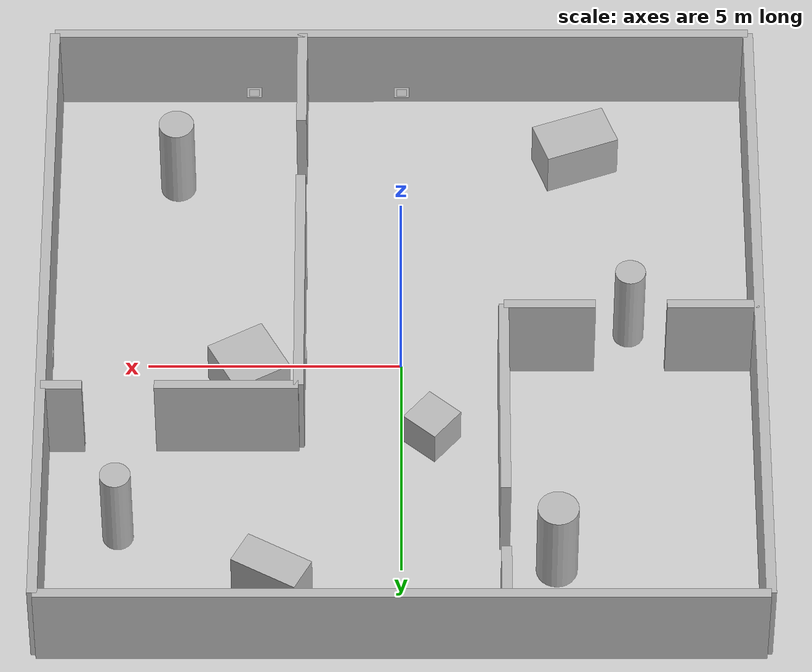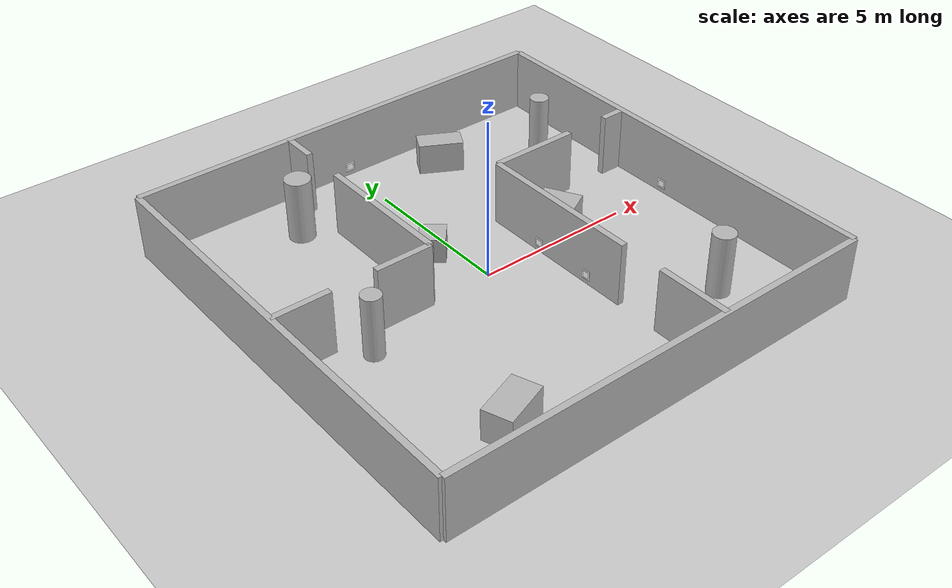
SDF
<?xml version="1.0" ?>
<sdf version="1.8">
  <world name="depot_world">
    <physics name="1ms" type="dart">
      <max_step_size>0.001</max_step_size>
      <real_time_factor>1.0</real_time_factor>
    </physics>

    <plugin filename="gz-sim-physics-system"
            name="gz::sim::systems::Physics"/>
    <plugin filename="gz-sim-user-commands-system"
            name="gz::sim::systems::UserCommands"/>
    <plugin filename="gz-sim-scene-broadcaster-system"
            name="gz::sim::systems::SceneBroadcaster"/>
    <plugin filename="gz-sim-sensors-system"
            name="gz::sim::systems::Sensors">
      <render_engine>ogre2</render_engine>
    </plugin>

    <plugin filename="gz-sim-imu-system"
            name="gz::sim::systems::Imu"/>
    <light type="directional" name="sun">
      <cast_shadows>true</cast_shadows>
      <pose>0 0 10 0 0 0</pose>
      <diffuse>0.8 0.8 0.8 1</diffuse>
      <specular>0.2 0.2 0.2 1</specular>
      <direction>-0.5 0.1 -0.9</direction>
    </light>

    <model name="ground_plane">
      <static>true</static>
      <link name="link">
        <collision name="collision">
          <geometry><plane><normal>0 0 1</normal></plane></geometry>
        </collision>
        <visual name="visual">
          <geometry><plane><normal>0 0 1</normal><size>100 100</size></plane></geometry>
          <material>
            <ambient>0.8 0.8 0.8 1</ambient>
            <diffuse>0.8 0.8 0.8 1</diffuse>
          </material>
        </visual>
      </link>
    </model>

    <!-- Outer shell: 14 x 14 m -->
    <model name="wall_north">
      <static>true</static>
      <pose>0 7 1 0 0 0</pose>
      <link name="link">
        <collision name="collision"><geometry><box><size>14 0.2 2</size></box></geometry></collision>
        <visual name="visual"><geometry><box><size>14 0.2 2</size></box></geometry></visual>
      </link>
    </model>

    <model name="wall_south">
      <static>true</static>
      <pose>0 -7 1 0 0 0</pose>
      <link name="link">
        <collision name="collision"><geometry><box><size>14 0.2 2</size></box></geometry></collision>
        <visual name="visual"><geometry><box><size>14 0.2 2</size></box></geometry></visual>
      </link>
    </model>

    <model name="wall_east">
      <static>true</static>
      <pose>7 0 1 0 0 0</pose>
      <link name="link">
        <collision name="collision"><geometry><box><size>0.2 14 2</size></box></geometry></collision>
        <visual name="visual"><geometry><box><size>0.2 14 2</size></box></geometry></visual>
      </link>
    </model>

    <model name="wall_west">
      <static>true</static>
      <pose>-7 0 1 0 0 0</pose>
      <link name="link">
        <collision name="collision"><geometry><box><size>0.2 14 2</size></box></geometry></collision>
        <visual name="visual"><geometry><box><size>0.2 14 2</size></box></geometry></visual>
      </link>
    </model>

    <model name="wall_h_w1">
      <static>true</static>
      <pose>-6.1 0 1 0 0 0</pose>
      <link name="link">
        <collision name="collision"><geometry><box><size>1.8 0.2 2</size></box></geometry></collision>
        <visual name="visual"><geometry><box><size>1.8 0.2 2</size></box></geometry></visual>
      </link>
    </model>

    <model name="wall_h_w2">
      <static>true</static>
      <pose>-2.9 0 1 0 0 0</pose>
      <link name="link">
        <collision name="collision"><geometry><box><size>1.8 0.2 2</size></box></geometry></collision>
        <visual name="visual"><geometry><box><size>1.8 0.2 2</size></box></geometry></visual>
      </link>
    </model>

    <model name="wall_v_w">
      <static>true</static>
      <pose>-2 2.25 1 0 0 0</pose>
      <link name="link">
        <collision name="collision"><geometry><box><size>0.2 4.5 2</size></box></geometry></collision>
        <visual name="visual"><geometry><box><size>0.2 4.5 2</size></box></geometry></visual>
      </link>
    </model>

    <model name="wall_v_w2">
      <static>true</static>
      <pose>-2 6.45 1 0 0 0</pose>
      <link name="link">
        <collision name="collision"><geometry><box><size>0.2 1.1 2</size></box></geometry></collision>
        <visual name="visual"><geometry><box><size>0.2 1.1 2</size></box></geometry></visual>
      </link>
    </model>

    <model name="wall_v_e">
      <static>true</static>
      <pose>2 -0.65 1 0 0 0</pose>
      <link name="link">
        <collision name="collision"><geometry><box><size>0.2 5.3 2</size></box></geometry></collision>
        <visual name="visual"><geometry><box><size>0.2 5.3 2</size></box></geometry></visual>
      </link>
    </model>

    <model name="wall_v_e2">
      <static>true</static>
      <pose>2 -5.85 1 0 0 0</pose>
      <link name="link">
        <collision name="collision"><geometry><box><size>0.2 2.3 2</size></box></geometry></collision>
        <visual name="visual"><geometry><box><size>0.2 2.3 2</size></box></geometry></visual>
      </link>
    </model>

    <model name="wall_h_e">
      <static>true</static>
      <pose>3.4 2 1 0 0 0</pose>
      <link name="link">
        <collision name="collision"><geometry><box><size>2.8 0.2 2</size></box></geometry></collision>
        <visual name="visual"><geometry><box><size>2.8 0.2 2</size></box></geometry></visual>
      </link>
    </model>

    <model name="wall_h_e2">
      <static>true</static>
      <pose>6.6 2 1 0 0 0</pose>
      <link name="link">
        <collision name="collision"><geometry><box><size>0.8 0.2 2</size></box></geometry></collision>
        <visual name="visual"><geometry><box><size>0.8 0.2 2</size></box></geometry></visual>
      </link>
    </model>

    <!-- Obstacles -->
    <model name="crate_mid">
      <static>true</static>
      <pose>3 0.5 0.5 0 0 0.5</pose>
      <link name="link">
        <collision name="collision"><geometry><box><size>1.2 1.2 1</size></box></geometry></collision>
        <visual name="visual"><geometry><box><size>1.2 1.2 1</size></box></geometry></visual>
      </link>
    </model>

    <model name="pillar_north">
      <static>true</static>
      <pose>-3 5 1 0 0 0</pose>
      <link name="link">
        <collision name="collision"><geometry><cylinder><radius>0.4</radius><length>2</length></cylinder></geometry></collision>
        <visual name="visual"><geometry><cylinder><radius>0.4</radius><length>2</length></cylinder></geometry></visual>
      </link>
    </model>

    <model name="crate_south_a">
      <static>true</static>
      <pose>-3.5 -5.2 0.5 0 0 0.35</pose>
      <link name="link">
        <collision name="collision"><geometry><box><size>1.5 0.9 1</size></box></geometry></collision>
        <visual name="visual"><geometry><box><size>1.5 0.9 1</size></box></geometry></visual>
      </link>
    </model>

    <model name="barrel_south">
      <static>true</static>
      <pose>4.5 -4.6 1 0 0 0</pose>
      <link name="link">
        <collision name="collision"><geometry><cylinder><radius>0.35</radius><length>2</length></cylinder></geometry></collision>
        <visual name="visual"><geometry><cylinder><radius>0.35</radius><length>2</length></cylinder></geometry></visual>
      </link>
    </model>

    <model name="barrel_mid_w">
      <static>true</static>
      <pose>-4.5 -0.8 1 0 0 0</pose>
      <link name="link">
        <collision name="collision"><geometry><cylinder><radius>0.3</radius><length>2</length></cylinder></geometry></collision>
        <visual name="visual"><geometry><cylinder><radius>0.3</radius><length>2</length></cylinder></geometry></visual>
      </link>
    </model>

    <model name="crate_mid_small">
      <static>true</static>
      <pose>-0.6 1.8 0.4 0 0 -0.7</pose>
      <link name="link">
        <collision name="collision"><geometry><box><size>0.8 0.8 0.8</size></box></geometry></collision>
        <visual name="visual"><geometry><box><size>0.8 0.8 0.8</size></box></geometry></visual>
      </link>
    </model>

    <model name="crate_north">
      <static>true</static>
      <pose>2.5 5.5 0.5 0 0 -0.5</pose>
      <link name="link">
        <collision name="collision"><geometry><box><size>1.4 0.7 1</size></box></geometry></collision>
        <visual name="visual"><geometry><box><size>1.4 0.7 1</size></box></geometry></visual>
      </link>
    </model>

    <model name="barrel_north_e">
      <static>true</static>
      <pose>5.5 4.2 1 0 0 0</pose>
      <link name="link">
        <collision name="collision"><geometry><cylinder><radius>0.3</radius><length>2</length></cylinder></geometry></collision>
        <visual name="visual"><geometry><cylinder><radius>0.3</radius><length>2</length></cylinder></geometry></visual>
      </link>
    </model>

    <!-- Visual "ArUco" markers (poses mirror
         leo_rover_exploration/config/mock_markers_depot_world.yaml) -->

      <model name="marker_1">
      <static>true</static>
      <pose>0.0 6.88 0.3 0 0 -1.5708</pose>
      <link name="link">
        <!-- north outer wall, north zone -->
        <visual name="board">
          <pose>-0.005 0 0 0 0 0</pose>
          <geometry><box><size>0.01 0.30 0.30</size></box></geometry>
          <material><ambient>1 1 1 1</ambient><diffuse>1 1 1 1</diffuse></material>
        </visual>
        <!-- The marker itself: 0.20 m black square, edge to edge. -->
        <visual name="visual">
          <geometry><box><size>0.01 0.20 0.20</size></box></geometry>
          <material>
            <ambient>1 1 1 1</ambient><diffuse>1 1 1 1</diffuse>
            <pbr><metal>
              <albedo_map>model://aruco_markers/textures/aruco_1_bare.png</albedo_map>
              <metalness>0.0</metalness><roughness>0.9</roughness>
            </metal></pbr>
          </material>
        </visual>
      </link>
    </model>
    <model name="marker_2">
      <static>true</static>
      <pose>3.0 -6.88 0.3 0 0 1.5708</pose>
      <link name="link">
        <!-- south outer wall, south-east room -->
        <visual name="board">
          <pose>-0.005 0 0 0 0 0</pose>
          <geometry><box><size>0.01 0.30 0.30</size></box></geometry>
          <material><ambient>1 1 1 1</ambient><diffuse>1 1 1 1</diffuse></material>
        </visual>
        <!-- The marker itself: 0.20 m black square, edge to edge. -->
        <visual name="visual">
          <geometry><box><size>0.01 0.20 0.20</size></box></geometry>
          <material>
            <ambient>1 1 1 1</ambient><diffuse>1 1 1 1</diffuse>
            <pbr><metal>
              <albedo_map>model://aruco_markers/textures/aruco_2_bare.png</albedo_map>
              <metalness>0.0</metalness><roughness>0.9</roughness>
            </metal></pbr>
          </material>
        </visual>
      </link>
    </model>
    <model name="marker_3">
      <static>true</static>
      <pose>1.88 0.0 0.3 0 0 3.1416</pose>
      <link name="link">
        <!-- x=2 partition west face, central column -->
        <visual name="board">
          <pose>-0.005 0 0 0 0 0</pose>
          <geometry><box><size>0.01 0.30 0.30</size></box></geometry>
          <material><ambient>1 1 1 1</ambient><diffuse>1 1 1 1</diffuse></material>
        </visual>
        <!-- The marker itself: 0.20 m black square, edge to edge. -->
        <visual name="visual">
          <geometry><box><size>0.01 0.20 0.20</size></box></geometry>
          <material>
            <ambient>1 1 1 1</ambient><diffuse>1 1 1 1</diffuse>
            <pbr><metal>
              <albedo_map>model://aruco_markers/textures/aruco_3_bare.png</albedo_map>
              <metalness>0.0</metalness><roughness>0.9</roughness>
            </metal></pbr>
          </material>
        </visual>
      </link>
    </model>
    <model name="marker_4">
      <static>true</static>
      <pose>6.88 0.0 0.3 0 0 3.1416</pose>
      <link name="link">
        <!-- east outer wall, middle-east room -->
        <visual name="board">
          <pose>-0.005 0 0 0 0 0</pose>
          <geometry><box><size>0.01 0.30 0.30</size></box></geometry>
          <material><ambient>1 1 1 1</ambient><diffuse>1 1 1 1</diffuse></material>
        </visual>
        <!-- The marker itself: 0.20 m black square, edge to edge. -->
        <visual name="visual">
          <geometry><box><size>0.01 0.20 0.20</size></box></geometry>
          <material>
            <ambient>1 1 1 1</ambient><diffuse>1 1 1 1</diffuse>
            <pbr><metal>
              <albedo_map>model://aruco_markers/textures/aruco_4_bare.png</albedo_map>
              <metalness>0.0</metalness><roughness>0.9</roughness>
            </metal></pbr>
          </material>
        </visual>
      </link>
    </model>
    <model name="marker_5">
      <static>true</static>
      <pose>1.88 -2.0 0.3 0 0 3.1416</pose>
      <link name="link">
        <!-- x=2 partition west face, south-central (shared) -->
        <visual name="board">
          <pose>-0.005 0 0 0 0 0</pose>
          <geometry><box><size>0.01 0.30 0.30</size></box></geometry>
          <material><ambient>1 1 1 1</ambient><diffuse>1 1 1 1</diffuse></material>
        </visual>
        <!-- The marker itself: 0.20 m black square, edge to edge. -->
        <visual name="visual">
          <geometry><box><size>0.01 0.20 0.20</size></box></geometry>
          <material>
            <ambient>1 1 1 1</ambient><diffuse>1 1 1 1</diffuse>
            <pbr><metal>
              <albedo_map>model://aruco_markers/textures/aruco_5_bare.png</albedo_map>
              <metalness>0.0</metalness><roughness>0.9</roughness>
            </metal></pbr>
          </material>
        </visual>
      </link>
    </model>
    <model name="marker_6">
      <static>true</static>
      <pose>0.0 -6.88 0.3 0 0 1.5708</pose>
      <link name="link">
        <!-- south outer wall, south-central (shared) -->
        <visual name="board">
          <pose>-0.005 0 0 0 0 0</pose>
          <geometry><box><size>0.01 0.30 0.30</size></box></geometry>
          <material><ambient>1 1 1 1</ambient><diffuse>1 1 1 1</diffuse></material>
        </visual>
        <!-- The marker itself: 0.20 m black square, edge to edge. -->
        <visual name="visual">
          <geometry><box><size>0.01 0.20 0.20</size></box></geometry>
          <material>
            <ambient>1 1 1 1</ambient><diffuse>1 1 1 1</diffuse>
            <pbr><metal>
              <albedo_map>model://aruco_markers/textures/aruco_6_bare.png</albedo_map>
              <metalness>0.0</metalness><roughness>0.9</roughness>
            </metal></pbr>
          </material>
        </visual>
      </link>
    </model>
</world>
</sdf>
